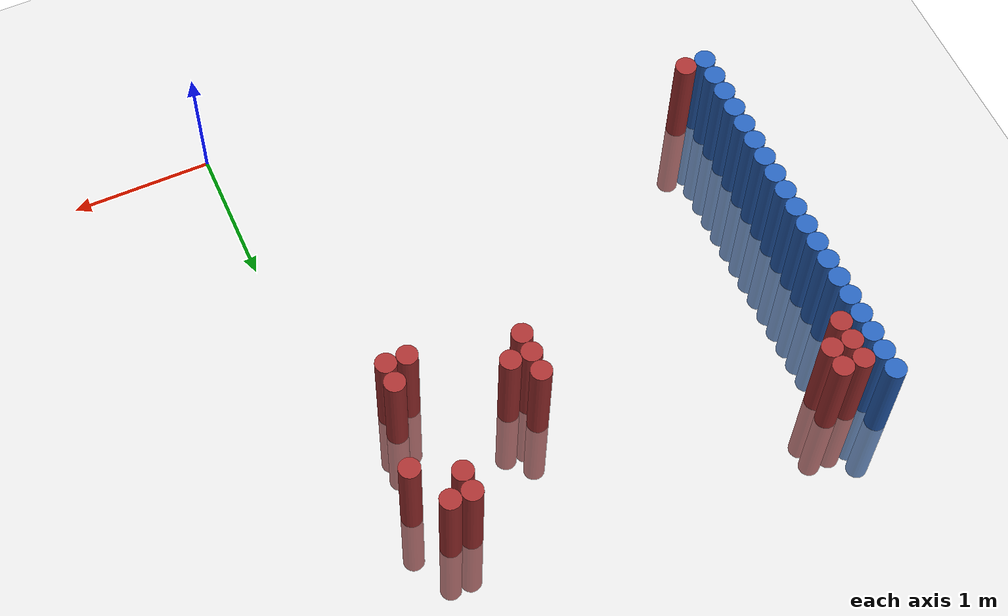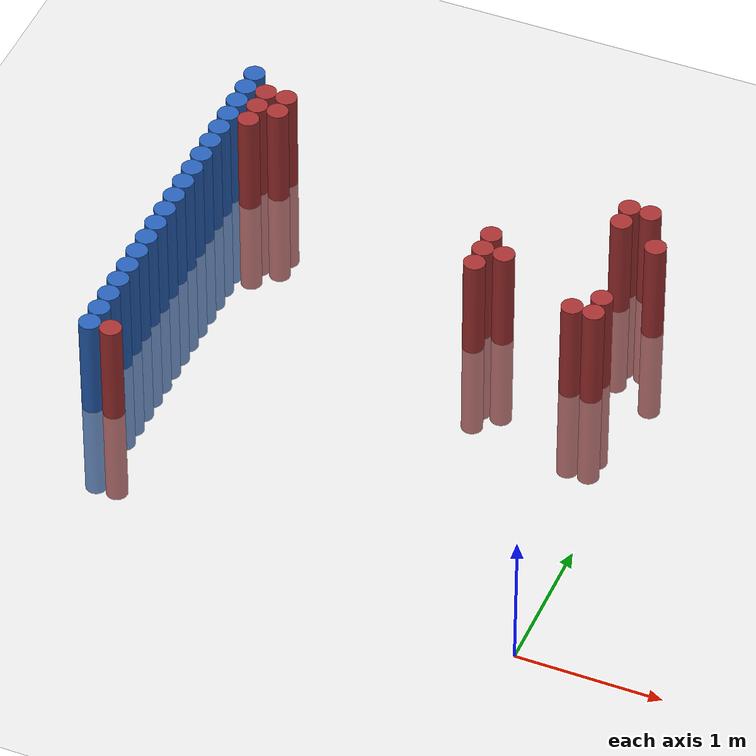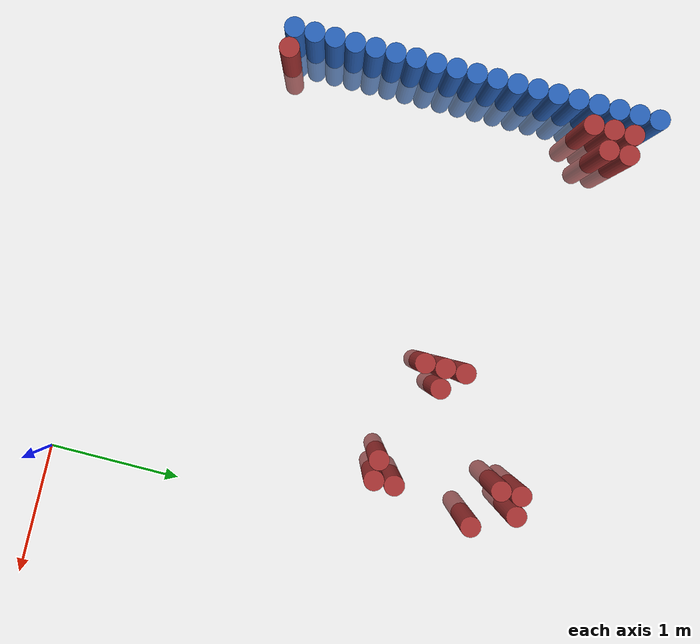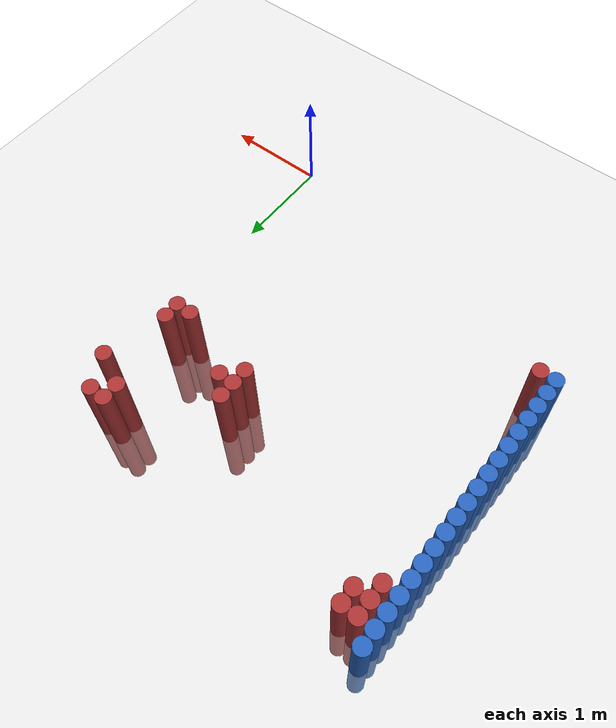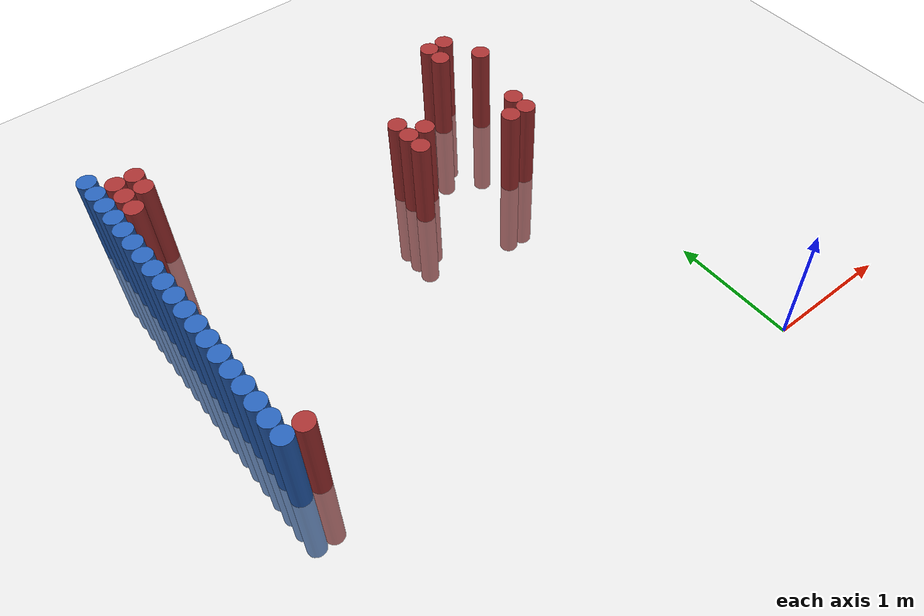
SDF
<sdf version="1.6">
 <world name="default">
  <model name="ground_plane">
   <static>1</static>
   <link name="link">
    <collision name="collision">
     <geometry><plane><normal>0 0 1</normal><size>100 100</size></plane></geometry>
     <surface><friction><ode><mu>100</mu><mu2>50</mu2></ode></friction></surface>
    </collision>
    <visual name="visual">
     <cast_shadows>0</cast_shadows>
     <geometry><plane><normal>0 0 1</normal><size>100 100</size></plane></geometry>
     <material>
      <script><uri>file://media/materials/scripts/gazebo.material</uri><name>Gazebo/Grey</name></script>
     </material>
    </visual>
   </link>
  </model>
  <model name="unit_cylinder_129">
   <static>1</static>
   <pose>-3.425000 1.075000 0.000000 0.000000 0.000000 0.000000</pose>
   <link name="link">
    <inertial>
     <mass>1</mass>
     <inertia><ixx>0.145833</ixx><ixy>0</ixy><ixz>0</ixz><iyy>0.145833</iyy><iyz>0</iyz><izz>0.125</izz></inertia>
    </inertial>
    <collision name="collision">
     <geometry><cylinder><radius>0.075000</radius><length>1.5</length></cylinder></geometry>
    </collision>
    <visual name="visual">
     <geometry><cylinder><radius>0.075000</radius><length>1.5</length></cylinder></geometry>
     <material>
      <ambient>0.152000 0.379000 0.720000 1</ambient>
      <diffuse>0.152000 0.379000 0.720000 1</diffuse>
     </material>
     <material>
      <script><name>Gazebo/Grey</name><uri>file://media/materials/scripts/gazebo.material</uri></script>
     </material>
    </visual>
   </link>
  </model>
  <model name="unit_cylinder_131">
   <static>1</static>
   <pose>-3.425000 1.225000 0.000000 0.000000 0.000000 0.000000</pose>
   <link name="link">
    <inertial>
     <mass>1</mass>
     <inertia><ixx>0.145833</ixx><ixy>0</ixy><ixz>0</ixz><iyy>0.145833</iyy><iyz>0</iyz><izz>0.125</izz></inertia>
    </inertial>
    <collision name="collision">
     <geometry><cylinder><radius>0.075000</radius><length>1.5</length></cylinder></geometry>
    </collision>
    <visual name="visual">
     <geometry><cylinder><radius>0.075000</radius><length>1.5</length></cylinder></geometry>
     <material>
      <ambient>0.152000 0.379000 0.720000 1</ambient>
      <diffuse>0.152000 0.379000 0.720000 1</diffuse>
     </material>
     <material>
      <script><name>Gazebo/Grey</name><uri>file://media/materials/scripts/gazebo.material</uri></script>
     </material>
    </visual>
   </link>
  </model>
  <model name="unit_cylinder_133">
   <static>1</static>
   <pose>-3.425000 1.375000 0.000000 0.000000 0.000000 0.000000</pose>
   <link name="link">
    <inertial>
     <mass>1</mass>
     <inertia><ixx>0.145833</ixx><ixy>0</ixy><ixz>0</ixz><iyy>0.145833</iyy><iyz>0</iyz><izz>0.125</izz></inertia>
    </inertial>
    <collision name="collision">
     <geometry><cylinder><radius>0.075000</radius><length>1.5</length></cylinder></geometry>
    </collision>
    <visual name="visual">
     <geometry><cylinder><radius>0.075000</radius><length>1.5</length></cylinder></geometry>
     <material>
      <ambient>0.152000 0.379000 0.720000 1</ambient>
      <diffuse>0.152000 0.379000 0.720000 1</diffuse>
     </material>
     <material>
      <script><name>Gazebo/Grey</name><uri>file://media/materials/scripts/gazebo.material</uri></script>
     </material>
    </visual>
   </link>
  </model>
  <model name="unit_cylinder_135">
   <static>1</static>
   <pose>-3.425000 1.525000 0.000000 0.000000 0.000000 0.000000</pose>
   <link name="link">
    <inertial>
     <mass>1</mass>
     <inertia><ixx>0.145833</ixx><ixy>0</ixy><ixz>0</ixz><iyy>0.145833</iyy><iyz>0</iyz><izz>0.125</izz></inertia>
    </inertial>
    <collision name="collision">
     <geometry><cylinder><radius>0.075000</radius><length>1.5</length></cylinder></geometry>
    </collision>
    <visual name="visual">
     <geometry><cylinder><radius>0.075000</radius><length>1.5</length></cylinder></geometry>
     <material>
      <ambient>0.152000 0.379000 0.720000 1</ambient>
      <diffuse>0.152000 0.379000 0.720000 1</diffuse>
     </material>
     <material>
      <script><name>Gazebo/Grey</name><uri>file://media/materials/scripts/gazebo.material</uri></script>
     </material>
    </visual>
   </link>
  </model>
  <model name="unit_cylinder_137">
   <static>1</static>
   <pose>-3.425000 1.675000 0.000000 0.000000 0.000000 0.000000</pose>
   <link name="link">
    <inertial>
     <mass>1</mass>
     <inertia><ixx>0.145833</ixx><ixy>0</ixy><ixz>0</ixz><iyy>0.145833</iyy><iyz>0</iyz><izz>0.125</izz></inertia>
    </inertial>
    <collision name="collision">
     <geometry><cylinder><radius>0.075000</radius><length>1.5</length></cylinder></geometry>
    </collision>
    <visual name="visual">
     <geometry><cylinder><radius>0.075000</radius><length>1.5</length></cylinder></geometry>
     <material>
      <ambient>0.152000 0.379000 0.720000 1</ambient>
      <diffuse>0.152000 0.379000 0.720000 1</diffuse>
     </material>
     <material>
      <script><name>Gazebo/Grey</name><uri>file://media/materials/scripts/gazebo.material</uri></script>
     </material>
    </visual>
   </link>
  </model>
  <model name="unit_cylinder_139">
   <static>1</static>
   <pose>-3.425000 1.825000 0.000000 0.000000 0.000000 0.000000</pose>
   <link name="link">
    <inertial>
     <mass>1</mass>
     <inertia><ixx>0.145833</ixx><ixy>0</ixy><ixz>0</ixz><iyy>0.145833</iyy><iyz>0</iyz><izz>0.125</izz></inertia>
    </inertial>
    <collision name="collision">
     <geometry><cylinder><radius>0.075000</radius><length>1.5</length></cylinder></geometry>
    </collision>
    <visual name="visual">
     <geometry><cylinder><radius>0.075000</radius><length>1.5</length></cylinder></geometry>
     <material>
      <ambient>0.152000 0.379000 0.720000 1</ambient>
      <diffuse>0.152000 0.379000 0.720000 1</diffuse>
     </material>
     <material>
      <script><name>Gazebo/Grey</name><uri>file://media/materials/scripts/gazebo.material</uri></script>
     </material>
    </visual>
   </link>
  </model>
  <model name="unit_cylinder_141">
   <static>1</static>
   <pose>-3.425000 1.975000 0.000000 0.000000 0.000000 0.000000</pose>
   <link name="link">
    <inertial>
     <mass>1</mass>
     <inertia><ixx>0.145833</ixx><ixy>0</ixy><ixz>0</ixz><iyy>0.145833</iyy><iyz>0</iyz><izz>0.125</izz></inertia>
    </inertial>
    <collision name="collision">
     <geometry><cylinder><radius>0.075000</radius><length>1.5</length></cylinder></geometry>
    </collision>
    <visual name="visual">
     <geometry><cylinder><radius>0.075000</radius><length>1.5</length></cylinder></geometry>
     <material>
      <ambient>0.152000 0.379000 0.720000 1</ambient>
      <diffuse>0.152000 0.379000 0.720000 1</diffuse>
     </material>
     <material>
      <script><name>Gazebo/Grey</name><uri>file://media/materials/scripts/gazebo.material</uri></script>
     </material>
    </visual>
   </link>
  </model>
  <model name="unit_cylinder_143">
   <static>1</static>
   <pose>-3.425000 2.125000 0.000000 0.000000 0.000000 0.000000</pose>
   <link name="link">
    <inertial>
     <mass>1</mass>
     <inertia><ixx>0.145833</ixx><ixy>0</ixy><ixz>0</ixz><iyy>0.145833</iyy><iyz>0</iyz><izz>0.125</izz></inertia>
    </inertial>
    <collision name="collision">
     <geometry><cylinder><radius>0.075000</radius><length>1.5</length></cylinder></geometry>
    </collision>
    <visual name="visual">
     <geometry><cylinder><radius>0.075000</radius><length>1.5</length></cylinder></geometry>
     <material>
      <ambient>0.152000 0.379000 0.720000 1</ambient>
      <diffuse>0.152000 0.379000 0.720000 1</diffuse>
     </material>
     <material>
      <script><name>Gazebo/Grey</name><uri>file://media/materials/scripts/gazebo.material</uri></script>
     </material>
    </visual>
   </link>
  </model>
  <model name="unit_cylinder_145">
   <static>1</static>
   <pose>-3.425000 2.275000 0.000000 0.000000 0.000000 0.000000</pose>
   <link name="link">
    <inertial>
     <mass>1</mass>
     <inertia><ixx>0.145833</ixx><ixy>0</ixy><ixz>0</ixz><iyy>0.145833</iyy><iyz>0</iyz><izz>0.125</izz></inertia>
    </inertial>
    <collision name="collision">
     <geometry><cylinder><radius>0.075000</radius><length>1.5</length></cylinder></geometry>
    </collision>
    <visual name="visual">
     <geometry><cylinder><radius>0.075000</radius><length>1.5</length></cylinder></geometry>
     <material>
      <ambient>0.152000 0.379000 0.720000 1</ambient>
      <diffuse>0.152000 0.379000 0.720000 1</diffuse>
     </material>
     <material>
      <script><name>Gazebo/Grey</name><uri>file://media/materials/scripts/gazebo.material</uri></script>
     </material>
    </visual>
   </link>
  </model>
  <model name="unit_cylinder_147">
   <static>1</static>
   <pose>-3.425000 2.425000 0.000000 0.000000 0.000000 0.000000</pose>
   <link name="link">
    <inertial>
     <mass>1</mass>
     <inertia><ixx>0.145833</ixx><ixy>0</ixy><ixz>0</ixz><iyy>0.145833</iyy><iyz>0</iyz><izz>0.125</izz></inertia>
    </inertial>
    <collision name="collision">
     <geometry><cylinder><radius>0.075000</radius><length>1.5</length></cylinder></geometry>
    </collision>
    <visual name="visual">
     <geometry><cylinder><radius>0.075000</radius><length>1.5</length></cylinder></geometry>
     <material>
      <ambient>0.152000 0.379000 0.720000 1</ambient>
      <diffuse>0.152000 0.379000 0.720000 1</diffuse>
     </material>
     <material>
      <script><name>Gazebo/Grey</name><uri>file://media/materials/scripts/gazebo.material</uri></script>
     </material>
    </visual>
   </link>
  </model>
  <model name="unit_cylinder_149">
   <static>1</static>
   <pose>-3.425000 2.575000 0.000000 0.000000 0.000000 0.000000</pose>
   <link name="link">
    <inertial>
     <mass>1</mass>
     <inertia><ixx>0.145833</ixx><ixy>0</ixy><ixz>0</ixz><iyy>0.145833</iyy><iyz>0</iyz><izz>0.125</izz></inertia>
    </inertial>
    <collision name="collision">
     <geometry><cylinder><radius>0.075000</radius><length>1.5</length></cylinder></geometry>
    </collision>
    <visual name="visual">
     <geometry><cylinder><radius>0.075000</radius><length>1.5</length></cylinder></geometry>
     <material>
      <ambient>0.152000 0.379000 0.720000 1</ambient>
      <diffuse>0.152000 0.379000 0.720000 1</diffuse>
     </material>
     <material>
      <script><name>Gazebo/Grey</name><uri>file://media/materials/scripts/gazebo.material</uri></script>
     </material>
    </visual>
   </link>
  </model>
  <model name="unit_cylinder_151">
   <static>1</static>
   <pose>-3.425000 2.725000 0.000000 0.000000 0.000000 0.000000</pose>
   <link name="link">
    <inertial>
     <mass>1</mass>
     <inertia><ixx>0.145833</ixx><ixy>0</ixy><ixz>0</ixz><iyy>0.145833</iyy><iyz>0</iyz><izz>0.125</izz></inertia>
    </inertial>
    <collision name="collision">
     <geometry><cylinder><radius>0.075000</radius><length>1.5</length></cylinder></geometry>
    </collision>
    <visual name="visual">
     <geometry><cylinder><radius>0.075000</radius><length>1.5</length></cylinder></geometry>
     <material>
      <ambient>0.152000 0.379000 0.720000 1</ambient>
      <diffuse>0.152000 0.379000 0.720000 1</diffuse>
     </material>
     <material>
      <script><name>Gazebo/Grey</name><uri>file://media/materials/scripts/gazebo.material</uri></script>
     </material>
    </visual>
   </link>
  </model>
  <model name="unit_cylinder_153">
   <static>1</static>
   <pose>-3.425000 2.875000 0.000000 0.000000 0.000000 0.000000</pose>
   <link name="link">
    <inertial>
     <mass>1</mass>
     <inertia><ixx>0.145833</ixx><ixy>0</ixy><ixz>0</ixz><iyy>0.145833</iyy><iyz>0</iyz><izz>0.125</izz></inertia>
    </inertial>
    <collision name="collision">
     <geometry><cylinder><radius>0.075000</radius><length>1.5</length></cylinder></geometry>
    </collision>
    <visual name="visual">
     <geometry><cylinder><radius>0.075000</radius><length>1.5</length></cylinder></geometry>
     <material>
      <ambient>0.152000 0.379000 0.720000 1</ambient>
      <diffuse>0.152000 0.379000 0.720000 1</diffuse>
     </material>
     <material>
      <script><name>Gazebo/Grey</name><uri>file://media/materials/scripts/gazebo.material</uri></script>
     </material>
    </visual>
   </link>
  </model>
  <model name="unit_cylinder_155">
   <static>1</static>
   <pose>-3.425000 3.025000 0.000000 0.000000 0.000000 0.000000</pose>
   <link name="link">
    <inertial>
     <mass>1</mass>
     <inertia><ixx>0.145833</ixx><ixy>0</ixy><ixz>0</ixz><iyy>0.145833</iyy><iyz>0</iyz><izz>0.125</izz></inertia>
    </inertial>
    <collision name="collision">
     <geometry><cylinder><radius>0.075000</radius><length>1.5</length></cylinder></geometry>
    </collision>
    <visual name="visual">
     <geometry><cylinder><radius>0.075000</radius><length>1.5</length></cylinder></geometry>
     <material>
      <ambient>0.152000 0.379000 0.720000 1</ambient>
      <diffuse>0.152000 0.379000 0.720000 1</diffuse>
     </material>
     <material>
      <script><name>Gazebo/Grey</name><uri>file://media/materials/scripts/gazebo.material</uri></script>
     </material>
    </visual>
   </link>
  </model>
  <model name="unit_cylinder_157">
   <static>1</static>
   <pose>-3.425000 3.175000 0.000000 0.000000 0.000000 0.000000</pose>
   <link name="link">
    <inertial>
     <mass>1</mass>
     <inertia><ixx>0.145833</ixx><ixy>0</ixy><ixz>0</ixz><iyy>0.145833</iyy><iyz>0</iyz><izz>0.125</izz></inertia>
    </inertial>
    <collision name="collision">
     <geometry><cylinder><radius>0.075000</radius><length>1.5</length></cylinder></geometry>
    </collision>
    <visual name="visual">
     <geometry><cylinder><radius>0.075000</radius><length>1.5</length></cylinder></geometry>
     <material>
      <ambient>0.152000 0.379000 0.720000 1</ambient>
      <diffuse>0.152000 0.379000 0.720000 1</diffuse>
     </material>
     <material>
      <script><name>Gazebo/Grey</name><uri>file://media/materials/scripts/gazebo.material</uri></script>
     </material>
    </visual>
   </link>
  </model>
  <model name="unit_cylinder_159">
   <static>1</static>
   <pose>-3.425000 3.325000 0.000000 0.000000 0.000000 0.000000</pose>
   <link name="link">
    <inertial>
     <mass>1</mass>
     <inertia><ixx>0.145833</ixx><ixy>0</ixy><ixz>0</ixz><iyy>0.145833</iyy><iyz>0</iyz><izz>0.125</izz></inertia>
    </inertial>
    <collision name="collision">
     <geometry><cylinder><radius>0.075000</radius><length>1.5</length></cylinder></geometry>
    </collision>
    <visual name="visual">
     <geometry><cylinder><radius>0.075000</radius><length>1.5</length></cylinder></geometry>
     <material>
      <ambient>0.152000 0.379000 0.720000 1</ambient>
      <diffuse>0.152000 0.379000 0.720000 1</diffuse>
     </material>
     <material>
      <script><name>Gazebo/Grey</name><uri>file://media/materials/scripts/gazebo.material</uri></script>
     </material>
    </visual>
   </link>
  </model>
  <model name="unit_cylinder_161">
   <static>1</static>
   <pose>-3.425000 3.475000 0.000000 0.000000 0.000000 0.000000</pose>
   <link name="link">
    <inertial>
     <mass>1</mass>
     <inertia><ixx>0.145833</ixx><ixy>0</ixy><ixz>0</ixz><iyy>0.145833</iyy><iyz>0</iyz><izz>0.125</izz></inertia>
    </inertial>
    <collision name="collision">
     <geometry><cylinder><radius>0.075000</radius><length>1.5</length></cylinder></geometry>
    </collision>
    <visual name="visual">
     <geometry><cylinder><radius>0.075000</radius><length>1.5</length></cylinder></geometry>
     <material>
      <ambient>0.152000 0.379000 0.720000 1</ambient>
      <diffuse>0.152000 0.379000 0.720000 1</diffuse>
     </material>
     <material>
      <script><name>Gazebo/Grey</name><uri>file://media/materials/scripts/gazebo.material</uri></script>
     </material>
    </visual>
   </link>
  </model>
  <model name="unit_cylinder_163">
   <static>1</static>
   <pose>-3.425000 3.625000 0.000000 0.000000 0.000000 0.000000</pose>
   <link name="link">
    <inertial>
     <mass>1</mass>
     <inertia><ixx>0.145833</ixx><ixy>0</ixy><ixz>0</ixz><iyy>0.145833</iyy><iyz>0</iyz><izz>0.125</izz></inertia>
    </inertial>
    <collision name="collision">
     <geometry><cylinder><radius>0.075000</radius><length>1.5</length></cylinder></geometry>
    </collision>
    <visual name="visual">
     <geometry><cylinder><radius>0.075000</radius><length>1.5</length></cylinder></geometry>
     <material>
      <ambient>0.152000 0.379000 0.720000 1</ambient>
      <diffuse>0.152000 0.379000 0.720000 1</diffuse>
     </material>
     <material>
      <script><name>Gazebo/Grey</name><uri>file://media/materials/scripts/gazebo.material</uri></script>
     </material>
    </visual>
   </link>
  </model>
  <model name="unit_cylinder_165">
   <static>1</static>
   <pose>-3.425000 3.775000 0.000000 0.000000 0.000000 0.000000</pose>
   <link name="link">
    <inertial>
     <mass>1</mass>
     <inertia><ixx>0.145833</ixx><ixy>0</ixy><ixz>0</ixz><iyy>0.145833</iyy><iyz>0</iyz><izz>0.125</izz></inertia>
    </inertial>
    <collision name="collision">
     <geometry><cylinder><radius>0.075000</radius><length>1.5</length></cylinder></geometry>
    </collision>
    <visual name="visual">
     <geometry><cylinder><radius>0.075000</radius><length>1.5</length></cylinder></geometry>
     <material>
      <ambient>0.152000 0.379000 0.720000 1</ambient>
      <diffuse>0.152000 0.379000 0.720000 1</diffuse>
     </material>
     <material>
      <script><name>Gazebo/Grey</name><uri>file://media/materials/scripts/gazebo.material</uri></script>
     </material>
    </visual>
   </link>
  </model>
  <model name="unit_cylinder_228">
   <static>1</static>
   <pose>-3.425000 1.075000 0.000000 0.000000 0.000000 0.000000</pose>
   <link name="link">
    <inertial>
     <mass>1</mass>
     <inertia><ixx>0.145833</ixx><ixy>0</ixy><ixz>0</ixz><iyy>0.145833</iyy><iyz>0</iyz><izz>0.125</izz></inertia>
    </inertial>
    <collision name="collision">
     <geometry><cylinder><radius>0.075000</radius><length>1.5</length></cylinder></geometry>
    </collision>
    <visual name="visual">
     <geometry><cylinder><radius>0.075000</radius><length>1.5</length></cylinder></geometry>
     <material>
      <ambient>0.152000 0.379000 0.720000 1</ambient>
      <diffuse>0.152000 0.379000 0.720000 1</diffuse>
     </material>
     <material>
      <script><name>Gazebo/Grey</name><uri>file://media/materials/scripts/gazebo.material</uri></script>
     </material>
    </visual>
   </link>
  </model>
  <model name="unit_cylinder_229">
   <static>1</static>
   <pose>-3.425000 1.225000 0.000000 0.000000 0.000000 0.000000</pose>
   <link name="link">
    <inertial>
     <mass>1</mass>
     <inertia><ixx>0.145833</ixx><ixy>0</ixy><ixz>0</ixz><iyy>0.145833</iyy><iyz>0</iyz><izz>0.125</izz></inertia>
    </inertial>
    <collision name="collision">
     <geometry><cylinder><radius>0.075000</radius><length>1.5</length></cylinder></geometry>
    </collision>
    <visual name="visual">
     <geometry><cylinder><radius>0.075000</radius><length>1.5</length></cylinder></geometry>
     <material>
      <ambient>0.152000 0.379000 0.720000 1</ambient>
      <diffuse>0.152000 0.379000 0.720000 1</diffuse>
     </material>
     <material>
      <script><name>Gazebo/Grey</name><uri>file://media/materials/scripts/gazebo.material</uri></script>
     </material>
    </visual>
   </link>
  </model>
  <model name="unit_cylinder_230">
   <static>1</static>
   <pose>-3.425000 1.375000 0.000000 0.000000 0.000000 0.000000</pose>
   <link name="link">
    <inertial>
     <mass>1</mass>
     <inertia><ixx>0.145833</ixx><ixy>0</ixy><ixz>0</ixz><iyy>0.145833</iyy><iyz>0</iyz><izz>0.125</izz></inertia>
    </inertial>
    <collision name="collision">
     <geometry><cylinder><radius>0.075000</radius><length>1.5</length></cylinder></geometry>
    </collision>
    <visual name="visual">
     <geometry><cylinder><radius>0.075000</radius><length>1.5</length></cylinder></geometry>
     <material>
      <ambient>0.152000 0.379000 0.720000 1</ambient>
      <diffuse>0.152000 0.379000 0.720000 1</diffuse>
     </material>
     <material>
      <script><name>Gazebo/Grey</name><uri>file://media/materials/scripts/gazebo.material</uri></script>
     </material>
    </visual>
   </link>
  </model>
  <model name="unit_cylinder_231">
   <static>1</static>
   <pose>-3.425000 1.525000 0.000000 0.000000 0.000000 0.000000</pose>
   <link name="link">
    <inertial>
     <mass>1</mass>
     <inertia><ixx>0.145833</ixx><ixy>0</ixy><ixz>0</ixz><iyy>0.145833</iyy><iyz>0</iyz><izz>0.125</izz></inertia>
    </inertial>
    <collision name="collision">
     <geometry><cylinder><radius>0.075000</radius><length>1.5</length></cylinder></geometry>
    </collision>
    <visual name="visual">
     <geometry><cylinder><radius>0.075000</radius><length>1.5</length></cylinder></geometry>
     <material>
      <ambient>0.152000 0.379000 0.720000 1</ambient>
      <diffuse>0.152000 0.379000 0.720000 1</diffuse>
     </material>
     <material>
      <script><name>Gazebo/Grey</name><uri>file://media/materials/scripts/gazebo.material</uri></script>
     </material>
    </visual>
   </link>
  </model>
  <model name="unit_cylinder_232">
   <static>1</static>
   <pose>-3.425000 1.675000 0.000000 0.000000 0.000000 0.000000</pose>
   <link name="link">
    <inertial>
     <mass>1</mass>
     <inertia><ixx>0.145833</ixx><ixy>0</ixy><ixz>0</ixz><iyy>0.145833</iyy><iyz>0</iyz><izz>0.125</izz></inertia>
    </inertial>
    <collision name="collision">
     <geometry><cylinder><radius>0.075000</radius><length>1.5</length></cylinder></geometry>
    </collision>
    <visual name="visual">
     <geometry><cylinder><radius>0.075000</radius><length>1.5</length></cylinder></geometry>
     <material>
      <ambient>0.152000 0.379000 0.720000 1</ambient>
      <diffuse>0.152000 0.379000 0.720000 1</diffuse>
     </material>
     <material>
      <script><name>Gazebo/Grey</name><uri>file://media/materials/scripts/gazebo.material</uri></script>
     </material>
    </visual>
   </link>
  </model>
  <model name="unit_cylinder_233">
   <static>1</static>
   <pose>-3.425000 1.825000 0.000000 0.000000 0.000000 0.000000</pose>
   <link name="link">
    <inertial>
     <mass>1</mass>
     <inertia><ixx>0.145833</ixx><ixy>0</ixy><ixz>0</ixz><iyy>0.145833</iyy><iyz>0</iyz><izz>0.125</izz></inertia>
    </inertial>
    <collision name="collision">
     <geometry><cylinder><radius>0.075000</radius><length>1.5</length></cylinder></geometry>
    </collision>
    <visual name="visual">
     <geometry><cylinder><radius>0.075000</radius><length>1.5</length></cylinder></geometry>
     <material>
      <ambient>0.152000 0.379000 0.720000 1</ambient>
      <diffuse>0.152000 0.379000 0.720000 1</diffuse>
     </material>
     <material>
      <script><name>Gazebo/Grey</name><uri>file://media/materials/scripts/gazebo.material</uri></script>
     </material>
    </visual>
   </link>
  </model>
  <model name="unit_cylinder_234">
   <static>1</static>
   <pose>-3.425000 1.975000 0.000000 0.000000 0.000000 0.000000</pose>
   <link name="link">
    <inertial>
     <mass>1</mass>
     <inertia><ixx>0.145833</ixx><ixy>0</ixy><ixz>0</ixz><iyy>0.145833</iyy><iyz>0</iyz><izz>0.125</izz></inertia>
    </inertial>
    <collision name="collision">
     <geometry><cylinder><radius>0.075000</radius><length>1.5</length></cylinder></geometry>
    </collision>
    <visual name="visual">
     <geometry><cylinder><radius>0.075000</radius><length>1.5</length></cylinder></geometry>
     <material>
      <ambient>0.152000 0.379000 0.720000 1</ambient>
      <diffuse>0.152000 0.379000 0.720000 1</diffuse>
     </material>
     <material>
      <script><name>Gazebo/Grey</name><uri>file://media/materials/scripts/gazebo.material</uri></script>
     </material>
    </visual>
   </link>
  </model>
  <model name="unit_cylinder_235">
   <static>1</static>
   <pose>-3.425000 2.125000 0.000000 0.000000 0.000000 0.000000</pose>
   <link name="link">
    <inertial>
     <mass>1</mass>
     <inertia><ixx>0.145833</ixx><ixy>0</ixy><ixz>0</ixz><iyy>0.145833</iyy><iyz>0</iyz><izz>0.125</izz></inertia>
    </inertial>
    <collision name="collision">
     <geometry><cylinder><radius>0.075000</radius><length>1.5</length></cylinder></geometry>
    </collision>
    <visual name="visual">
     <geometry><cylinder><radius>0.075000</radius><length>1.5</length></cylinder></geometry>
     <material>
      <ambient>0.152000 0.379000 0.720000 1</ambient>
      <diffuse>0.152000 0.379000 0.720000 1</diffuse>
     </material>
     <material>
      <script><name>Gazebo/Grey</name><uri>file://media/materials/scripts/gazebo.material</uri></script>
     </material>
    </visual>
   </link>
  </model>
  <model name="unit_cylinder_236">
   <static>1</static>
   <pose>-3.425000 2.275000 0.000000 0.000000 0.000000 0.000000</pose>
   <link name="link">
    <inertial>
     <mass>1</mass>
     <inertia><ixx>0.145833</ixx><ixy>0</ixy><ixz>0</ixz><iyy>0.145833</iyy><iyz>0</iyz><izz>0.125</izz></inertia>
    </inertial>
    <collision name="collision">
     <geometry><cylinder><radius>0.075000</radius><length>1.5</length></cylinder></geometry>
    </collision>
    <visual name="visual">
     <geometry><cylinder><radius>0.075000</radius><length>1.5</length></cylinder></geometry>
     <material>
      <ambient>0.152000 0.379000 0.720000 1</ambient>
      <diffuse>0.152000 0.379000 0.720000 1</diffuse>
     </material>
     <material>
      <script><name>Gazebo/Grey</name><uri>file://media/materials/scripts/gazebo.material</uri></script>
     </material>
    </visual>
   </link>
  </model>
  <model name="unit_cylinder_237">
   <static>1</static>
   <pose>-3.425000 2.425000 0.000000 0.000000 0.000000 0.000000</pose>
   <link name="link">
    <inertial>
     <mass>1</mass>
     <inertia><ixx>0.145833</ixx><ixy>0</ixy><ixz>0</ixz><iyy>0.145833</iyy><iyz>0</iyz><izz>0.125</izz></inertia>
    </inertial>
    <collision name="collision">
     <geometry><cylinder><radius>0.075000</radius><length>1.5</length></cylinder></geometry>
    </collision>
    <visual name="visual">
     <geometry><cylinder><radius>0.075000</radius><length>1.5</length></cylinder></geometry>
     <material>
      <ambient>0.152000 0.379000 0.720000 1</ambient>
      <diffuse>0.152000 0.379000 0.720000 1</diffuse>
     </material>
     <material>
      <script><name>Gazebo/Grey</name><uri>file://media/materials/scripts/gazebo.material</uri></script>
     </material>
    </visual>
   </link>
  </model>
  <model name="unit_cylinder_238">
   <static>1</static>
   <pose>-3.425000 2.575000 0.000000 0.000000 0.000000 0.000000</pose>
   <link name="link">
    <inertial>
     <mass>1</mass>
     <inertia><ixx>0.145833</ixx><ixy>0</ixy><ixz>0</ixz><iyy>0.145833</iyy><iyz>0</iyz><izz>0.125</izz></inertia>
    </inertial>
    <collision name="collision">
     <geometry><cylinder><radius>0.075000</radius><length>1.5</length></cylinder></geometry>
    </collision>
    <visual name="visual">
     <geometry><cylinder><radius>0.075000</radius><length>1.5</length></cylinder></geometry>
     <material>
      <ambient>0.152000 0.379000 0.720000 1</ambient>
      <diffuse>0.152000 0.379000 0.720000 1</diffuse>
     </material>
     <material>
      <script><name>Gazebo/Grey</name><uri>file://media/materials/scripts/gazebo.material</uri></script>
     </material>
    </visual>
   </link>
  </model>
  <model name="unit_cylinder_239">
   <static>1</static>
   <pose>-3.425000 2.725000 0.000000 0.000000 0.000000 0.000000</pose>
   <link name="link">
    <inertial>
     <mass>1</mass>
     <inertia><ixx>0.145833</ixx><ixy>0</ixy><ixz>0</ixz><iyy>0.145833</iyy><iyz>0</iyz><izz>0.125</izz></inertia>
    </inertial>
    <collision name="collision">
     <geometry><cylinder><radius>0.075000</radius><length>1.5</length></cylinder></geometry>
    </collision>
    <visual name="visual">
     <geometry><cylinder><radius>0.075000</radius><length>1.5</length></cylinder></geometry>
     <material>
      <ambient>0.152000 0.379000 0.720000 1</ambient>
      <diffuse>0.152000 0.379000 0.720000 1</diffuse>
     </material>
     <material>
      <script><name>Gazebo/Grey</name><uri>file://media/materials/scripts/gazebo.material</uri></script>
     </material>
    </visual>
   </link>
  </model>
  <model name="unit_cylinder_240">
   <static>1</static>
   <pose>-3.425000 2.875000 0.000000 0.000000 0.000000 0.000000</pose>
   <link name="link">
    <inertial>
     <mass>1</mass>
     <inertia><ixx>0.145833</ixx><ixy>0</ixy><ixz>0</ixz><iyy>0.145833</iyy><iyz>0</iyz><izz>0.125</izz></inertia>
    </inertial>
    <collision name="collision">
     <geometry><cylinder><radius>0.075000</radius><length>1.5</length></cylinder></geometry>
    </collision>
    <visual name="visual">
     <geometry><cylinder><radius>0.075000</radius><length>1.5</length></cylinder></geometry>
     <material>
      <ambient>0.152000 0.379000 0.720000 1</ambient>
      <diffuse>0.152000 0.379000 0.720000 1</diffuse>
     </material>
     <material>
      <script><name>Gazebo/Grey</name><uri>file://media/materials/scripts/gazebo.material</uri></script>
     </material>
    </visual>
   </link>
  </model>
  <model name="unit_cylinder_241">
   <static>1</static>
   <pose>-3.425000 3.025000 0.000000 0.000000 0.000000 0.000000</pose>
   <link name="link">
    <inertial>
     <mass>1</mass>
     <inertia><ixx>0.145833</ixx><ixy>0</ixy><ixz>0</ixz><iyy>0.145833</iyy><iyz>0</iyz><izz>0.125</izz></inertia>
    </inertial>
    <collision name="collision">
     <geometry><cylinder><radius>0.075000</radius><length>1.5</length></cylinder></geometry>
    </collision>
    <visual name="visual">
     <geometry><cylinder><radius>0.075000</radius><length>1.5</length></cylinder></geometry>
     <material>
      <ambient>0.152000 0.379000 0.720000 1</ambient>
      <diffuse>0.152000 0.379000 0.720000 1</diffuse>
     </material>
     <material>
      <script><name>Gazebo/Grey</name><uri>file://media/materials/scripts/gazebo.material</uri></script>
     </material>
    </visual>
   </link>
  </model>
  <model name="unit_cylinder_242">
   <static>1</static>
   <pose>-3.425000 3.175000 0.000000 0.000000 0.000000 0.000000</pose>
   <link name="link">
    <inertial>
     <mass>1</mass>
     <inertia><ixx>0.145833</ixx><ixy>0</ixy><ixz>0</ixz><iyy>0.145833</iyy><iyz>0</iyz><izz>0.125</izz></inertia>
    </inertial>
    <collision name="collision">
     <geometry><cylinder><radius>0.075000</radius><length>1.5</length></cylinder></geometry>
    </collision>
    <visual name="visual">
     <geometry><cylinder><radius>0.075000</radius><length>1.5</length></cylinder></geometry>
     <material>
      <ambient>0.152000 0.379000 0.720000 1</ambient>
      <diffuse>0.152000 0.379000 0.720000 1</diffuse>
     </material>
     <material>
      <script><name>Gazebo/Grey</name><uri>file://media/materials/scripts/gazebo.material</uri></script>
     </material>
    </visual>
   </link>
  </model>
  <model name="unit_cylinder_243">
   <static>1</static>
   <pose>-3.425000 3.325000 0.000000 0.000000 0.000000 0.000000</pose>
   <link name="link">
    <inertial>
     <mass>1</mass>
     <inertia><ixx>0.145833</ixx><ixy>0</ixy><ixz>0</ixz><iyy>0.145833</iyy><iyz>0</iyz><izz>0.125</izz></inertia>
    </inertial>
    <collision name="collision">
     <geometry><cylinder><radius>0.075000</radius><length>1.5</length></cylinder></geometry>
    </collision>
    <visual name="visual">
     <geometry><cylinder><radius>0.075000</radius><length>1.5</length></cylinder></geometry>
     <material>
      <ambient>0.152000 0.379000 0.720000 1</ambient>
      <diffuse>0.152000 0.379000 0.720000 1</diffuse>
     </material>
     <material>
      <script><name>Gazebo/Grey</name><uri>file://media/materials/scripts/gazebo.material</uri></script>
     </material>
    </visual>
   </link>
  </model>
  <model name="unit_cylinder_244">
   <static>1</static>
   <pose>-3.425000 3.475000 0.000000 0.000000 0.000000 0.000000</pose>
   <link name="link">
    <inertial>
     <mass>1</mass>
     <inertia><ixx>0.145833</ixx><ixy>0</ixy><ixz>0</ixz><iyy>0.145833</iyy><iyz>0</iyz><izz>0.125</izz></inertia>
    </inertial>
    <collision name="collision">
     <geometry><cylinder><radius>0.075000</radius><length>1.5</length></cylinder></geometry>
    </collision>
    <visual name="visual">
     <geometry><cylinder><radius>0.075000</radius><length>1.5</length></cylinder></geometry>
     <material>
      <ambient>0.152000 0.379000 0.720000 1</ambient>
      <diffuse>0.152000 0.379000 0.720000 1</diffuse>
     </material>
     <material>
      <script><name>Gazebo/Grey</name><uri>file://media/materials/scripts/gazebo.material</uri></script>
     </material>
    </visual>
   </link>
  </model>
  <model name="unit_cylinder_245">
   <static>1</static>
   <pose>-3.425000 3.625000 0.000000 0.000000 0.000000 0.000000</pose>
   <link name="link">
    <inertial>
     <mass>1</mass>
     <inertia><ixx>0.145833</ixx><ixy>0</ixy><ixz>0</ixz><iyy>0.145833</iyy><iyz>0</iyz><izz>0.125</izz></inertia>
    </inertial>
    <collision name="collision">
     <geometry><cylinder><radius>0.075000</radius><length>1.5</length></cylinder></geometry>
    </collision>
    <visual name="visual">
     <geometry><cylinder><radius>0.075000</radius><length>1.5</length></cylinder></geometry>
     <material>
      <ambient>0.152000 0.379000 0.720000 1</ambient>
      <diffuse>0.152000 0.379000 0.720000 1</diffuse>
     </material>
     <material>
      <script><name>Gazebo/Grey</name><uri>file://media/materials/scripts/gazebo.material</uri></script>
     </material>
    </visual>
   </link>
  </model>
  <model name="unit_cylinder_273">
   <static>1</static>
   <pose>-3.275000 1.075000 0.000000 0.000000 0.000000 0.000000</pose>
   <link name="link">
    <inertial>
     <mass>1</mass>
     <inertia><ixx>0.145833</ixx><ixy>0</ixy><ixz>0</ixz><iyy>0.145833</iyy><iyz>0</iyz><izz>0.125</izz></inertia>
    </inertial>
    <collision name="collision">
     <geometry><cylinder><radius>0.075000</radius><length>1.5</length></cylinder></geometry>
    </collision>
    <visual name="visual">
     <geometry><cylinder><radius>0.075000</radius><length>1.5</length></cylinder></geometry>
     <material>
      <ambient>0.648000 0.192000 0.192000 1</ambient>
      <diffuse>0.648000 0.192000 0.192000 1</diffuse>
     </material>
     <material>
      <script><name>Gazebo/Grey</name><uri>file://media/materials/scripts/gazebo.material</uri></script>
     </material>
    </visual>
   </link>
  </model>
  <model name="unit_cylinder_274">
   <static>1</static>
   <pose>-3.275000 3.325000 0.000000 0.000000 0.000000 0.000000</pose>
   <link name="link">
    <inertial>
     <mass>1</mass>
     <inertia><ixx>0.145833</ixx><ixy>0</ixy><ixz>0</ixz><iyy>0.145833</iyy><iyz>0</iyz><izz>0.125</izz></inertia>
    </inertial>
    <collision name="collision">
     <geometry><cylinder><radius>0.075000</radius><length>1.5</length></cylinder></geometry>
    </collision>
    <visual name="visual">
     <geometry><cylinder><radius>0.075000</radius><length>1.5</length></cylinder></geometry>
     <material>
      <ambient>0.648000 0.192000 0.192000 1</ambient>
      <diffuse>0.648000 0.192000 0.192000 1</diffuse>
     </material>
     <material>
      <script><name>Gazebo/Grey</name><uri>file://media/materials/scripts/gazebo.material</uri></script>
     </material>
    </visual>
   </link>
  </model>
  <model name="unit_cylinder_275">
   <static>1</static>
   <pose>-3.275000 3.475000 0.000000 0.000000 0.000000 0.000000</pose>
   <link name="link">
    <inertial>
     <mass>1</mass>
     <inertia><ixx>0.145833</ixx><ixy>0</ixy><ixz>0</ixz><iyy>0.145833</iyy><iyz>0</iyz><izz>0.125</izz></inertia>
    </inertial>
    <collision name="collision">
     <geometry><cylinder><radius>0.075000</radius><length>1.5</length></cylinder></geometry>
    </collision>
    <visual name="visual">
     <geometry><cylinder><radius>0.075000</radius><length>1.5</length></cylinder></geometry>
     <material>
      <ambient>0.648000 0.192000 0.192000 1</ambient>
      <diffuse>0.648000 0.192000 0.192000 1</diffuse>
     </material>
     <material>
      <script><name>Gazebo/Grey</name><uri>file://media/materials/scripts/gazebo.material</uri></script>
     </material>
    </visual>
   </link>
  </model>
  <model name="unit_cylinder_276">
   <static>1</static>
   <pose>-3.275000 3.625000 0.000000 0.000000 0.000000 0.000000</pose>
   <link name="link">
    <inertial>
     <mass>1</mass>
     <inertia><ixx>0.145833</ixx><ixy>0</ixy><ixz>0</ixz><iyy>0.145833</iyy><iyz>0</iyz><izz>0.125</izz></inertia>
    </inertial>
    <collision name="collision">
     <geometry><cylinder><radius>0.075000</radius><length>1.5</length></cylinder></geometry>
    </collision>
    <visual name="visual">
     <geometry><cylinder><radius>0.075000</radius><length>1.5</length></cylinder></geometry>
     <material>
      <ambient>0.648000 0.192000 0.192000 1</ambient>
      <diffuse>0.648000 0.192000 0.192000 1</diffuse>
     </material>
     <material>
      <script><name>Gazebo/Grey</name><uri>file://media/materials/scripts/gazebo.material</uri></script>
     </material>
    </visual>
   </link>
  </model>
  <model name="unit_cylinder_289">
   <static>1</static>
   <pose>-3.125000 3.475000 0.000000 0.000000 0.000000 0.000000</pose>
   <link name="link">
    <inertial>
     <mass>1</mass>
     <inertia><ixx>0.145833</ixx><ixy>0</ixy><ixz>0</ixz><iyy>0.145833</iyy><iyz>0</iyz><izz>0.125</izz></inertia>
    </inertial>
    <collision name="collision">
     <geometry><cylinder><radius>0.075000</radius><length>1.5</length></cylinder></geometry>
    </collision>
    <visual name="visual">
     <geometry><cylinder><radius>0.075000</radius><length>1.5</length></cylinder></geometry>
     <material>
      <ambient>0.648000 0.192000 0.192000 1</ambient>
      <diffuse>0.648000 0.192000 0.192000 1</diffuse>
     </material>
     <material>
      <script><name>Gazebo/Grey</name><uri>file://media/materials/scripts/gazebo.material</uri></script>
     </material>
    </visual>
   </link>
  </model>
  <model name="unit_cylinder_290">
   <static>1</static>
   <pose>-3.125000 3.625000 0.000000 0.000000 0.000000 0.000000</pose>
   <link name="link">
    <inertial>
     <mass>1</mass>
     <inertia><ixx>0.145833</ixx><ixy>0</ixy><ixz>0</ixz><iyy>0.145833</iyy><iyz>0</iyz><izz>0.125</izz></inertia>
    </inertial>
    <collision name="collision">
     <geometry><cylinder><radius>0.075000</radius><length>1.5</length></cylinder></geometry>
    </collision>
    <visual name="visual">
     <geometry><cylinder><radius>0.075000</radius><length>1.5</length></cylinder></geometry>
     <material>
      <ambient>0.648000 0.192000 0.192000 1</ambient>
      <diffuse>0.648000 0.192000 0.192000 1</diffuse>
     </material>
     <material>
      <script><name>Gazebo/Grey</name><uri>file://media/materials/scripts/gazebo.material</uri></script>
     </material>
    </visual>
   </link>
  </model>
  <model name="unit_cylinder_327">
   <static>1</static>
   <pose>-1.325000 2.575000 0.000000 0.000000 0.000000 0.000000</pose>
   <link name="link">
    <inertial>
     <mass>1</mass>
     <inertia><ixx>0.145833</ixx><ixy>0</ixy><ixz>0</ixz><iyy>0.145833</iyy><iyz>0</iyz><izz>0.125</izz></inertia>
    </inertial>
    <collision name="collision">
     <geometry><cylinder><radius>0.075000</radius><length>1.5</length></cylinder></geometry>
    </collision>
    <visual name="visual">
     <geometry><cylinder><radius>0.075000</radius><length>1.5</length></cylinder></geometry>
     <material>
      <ambient>0.648000 0.192000 0.192000 1</ambient>
      <diffuse>0.648000 0.192000 0.192000 1</diffuse>
     </material>
     <material>
      <script><name>Gazebo/Grey</name><uri>file://media/materials/scripts/gazebo.material</uri></script>
     </material>
    </visual>
   </link>
  </model>
  <model name="unit_cylinder_328">
   <static>1</static>
   <pose>-1.325000 2.725000 0.000000 0.000000 0.000000 0.000000</pose>
   <link name="link">
    <inertial>
     <mass>1</mass>
     <inertia><ixx>0.145833</ixx><ixy>0</ixy><ixz>0</ixz><iyy>0.145833</iyy><iyz>0</iyz><izz>0.125</izz></inertia>
    </inertial>
    <collision name="collision">
     <geometry><cylinder><radius>0.075000</radius><length>1.5</length></cylinder></geometry>
    </collision>
    <visual name="visual">
     <geometry><cylinder><radius>0.075000</radius><length>1.5</length></cylinder></geometry>
     <material>
      <ambient>0.648000 0.192000 0.192000 1</ambient>
      <diffuse>0.648000 0.192000 0.192000 1</diffuse>
     </material>
     <material>
      <script><name>Gazebo/Grey</name><uri>file://media/materials/scripts/gazebo.material</uri></script>
     </material>
    </visual>
   </link>
  </model>
  <model name="unit_cylinder_329">
   <static>1</static>
   <pose>-1.325000 2.875000 0.000000 0.000000 0.000000 0.000000</pose>
   <link name="link">
    <inertial>
     <mass>1</mass>
     <inertia><ixx>0.145833</ixx><ixy>0</ixy><ixz>0</ixz><iyy>0.145833</iyy><iyz>0</iyz><izz>0.125</izz></inertia>
    </inertial>
    <collision name="collision">
     <geometry><cylinder><radius>0.075000</radius><length>1.5</length></cylinder></geometry>
    </collision>
    <visual name="visual">
     <geometry><cylinder><radius>0.075000</radius><length>1.5</length></cylinder></geometry>
     <material>
      <ambient>0.648000 0.192000 0.192000 1</ambient>
      <diffuse>0.648000 0.192000 0.192000 1</diffuse>
     </material>
     <material>
      <script><name>Gazebo/Grey</name><uri>file://media/materials/scripts/gazebo.material</uri></script>
     </material>
    </visual>
   </link>
  </model>
  <model name="unit_cylinder_330">
   <static>1</static>
   <pose>-1.175000 2.725000 0.000000 0.000000 0.000000 0.000000</pose>
   <link name="link">
    <inertial>
     <mass>1</mass>
     <inertia><ixx>0.145833</ixx><ixy>0</ixy><ixz>0</ixz><iyy>0.145833</iyy><iyz>0</iyz><izz>0.125</izz></inertia>
    </inertial>
    <collision name="collision">
     <geometry><cylinder><radius>0.075000</radius><length>1.5</length></cylinder></geometry>
    </collision>
    <visual name="visual">
     <geometry><cylinder><radius>0.075000</radius><length>1.5</length></cylinder></geometry>
     <material>
      <ambient>0.648000 0.192000 0.192000 1</ambient>
      <diffuse>0.648000 0.192000 0.192000 1</diffuse>
     </material>
     <material>
      <script><name>Gazebo/Grey</name><uri>file://media/materials/scripts/gazebo.material</uri></script>
     </material>
    </visual>
   </link>
  </model>
  <model name="unit_cylinder_337">
   <static>1</static>
   <pose>-0.575000 2.425000 0.000000 0.000000 0.000000 0.000000</pose>
   <link name="link">
    <inertial>
     <mass>1</mass>
     <inertia><ixx>0.145833</ixx><ixy>0</ixy><ixz>0</ixz><iyy>0.145833</iyy><iyz>0</iyz><izz>0.125</izz></inertia>
    </inertial>
    <collision name="collision">
     <geometry><cylinder><radius>0.075000</radius><length>1.5</length></cylinder></geometry>
    </collision>
    <visual name="visual">
     <geometry><cylinder><radius>0.075000</radius><length>1.5</length></cylinder></geometry>
     <material>
      <ambient>0.648000 0.192000 0.192000 1</ambient>
      <diffuse>0.648000 0.192000 0.192000 1</diffuse>
     </material>
     <material>
      <script><name>Gazebo/Grey</name><uri>file://media/materials/scripts/gazebo.material</uri></script>
     </material>
    </visual>
   </link>
  </model>
  <model name="unit_cylinder_338">
   <static>1</static>
   <pose>-0.575000 3.325000 0.000000 0.000000 0.000000 0.000000</pose>
   <link name="link">
    <inertial>
     <mass>1</mass>
     <inertia><ixx>0.145833</ixx><ixy>0</ixy><ixz>0</ixz><iyy>0.145833</iyy><iyz>0</iyz><izz>0.125</izz></inertia>
    </inertial>
    <collision name="collision">
     <geometry><cylinder><radius>0.075000</radius><length>1.5</length></cylinder></geometry>
    </collision>
    <visual name="visual">
     <geometry><cylinder><radius>0.075000</radius><length>1.5</length></cylinder></geometry>
     <material>
      <ambient>0.648000 0.192000 0.192000 1</ambient>
      <diffuse>0.648000 0.192000 0.192000 1</diffuse>
     </material>
     <material>
      <script><name>Gazebo/Grey</name><uri>file://media/materials/scripts/gazebo.material</uri></script>
     </material>
    </visual>
   </link>
  </model>
  <model name="unit_cylinder_339">
   <static>1</static>
   <pose>-0.575000 3.475000 0.000000 0.000000 0.000000 0.000000</pose>
   <link name="link">
    <inertial>
     <mass>1</mass>
     <inertia><ixx>0.145833</ixx><ixy>0</ixy><ixz>0</ixz><iyy>0.145833</iyy><iyz>0</iyz><izz>0.125</izz></inertia>
    </inertial>
    <collision name="collision">
     <geometry><cylinder><radius>0.075000</radius><length>1.5</length></cylinder></geometry>
    </collision>
    <visual name="visual">
     <geometry><cylinder><radius>0.075000</radius><length>1.5</length></cylinder></geometry>
     <material>
      <ambient>0.648000 0.192000 0.192000 1</ambient>
      <diffuse>0.648000 0.192000 0.192000 1</diffuse>
     </material>
     <material>
      <script><name>Gazebo/Grey</name><uri>file://media/materials/scripts/gazebo.material</uri></script>
     </material>
    </visual>
   </link>
  </model>
  <model name="unit_cylinder_345">
   <static>1</static>
   <pose>-0.425000 2.425000 0.000000 0.000000 0.000000 0.000000</pose>
   <link name="link">
    <inertial>
     <mass>1</mass>
     <inertia><ixx>0.145833</ixx><ixy>0</ixy><ixz>0</ixz><iyy>0.145833</iyy><iyz>0</iyz><izz>0.125</izz></inertia>
    </inertial>
    <collision name="collision">
     <geometry><cylinder><radius>0.075000</radius><length>1.5</length></cylinder></geometry>
    </collision>
    <visual name="visual">
     <geometry><cylinder><radius>0.075000</radius><length>1.5</length></cylinder></geometry>
     <material>
      <ambient>0.648000 0.192000 0.192000 1</ambient>
      <diffuse>0.648000 0.192000 0.192000 1</diffuse>
     </material>
     <material>
      <script><name>Gazebo/Grey</name><uri>file://media/materials/scripts/gazebo.material</uri></script>
     </material>
    </visual>
   </link>
  </model>
  <model name="unit_cylinder_346">
   <static>1</static>
   <pose>-0.425000 2.575000 0.000000 0.000000 0.000000 0.000000</pose>
   <link name="link">
    <inertial>
     <mass>1</mass>
     <inertia><ixx>0.145833</ixx><ixy>0</ixy><ixz>0</ixz><iyy>0.145833</iyy><iyz>0</iyz><izz>0.125</izz></inertia>
    </inertial>
    <collision name="collision">
     <geometry><cylinder><radius>0.075000</radius><length>1.5</length></cylinder></geometry>
    </collision>
    <visual name="visual">
     <geometry><cylinder><radius>0.075000</radius><length>1.5</length></cylinder></geometry>
     <material>
      <ambient>0.648000 0.192000 0.192000 1</ambient>
      <diffuse>0.648000 0.192000 0.192000 1</diffuse>
     </material>
     <material>
      <script><name>Gazebo/Grey</name><uri>file://media/materials/scripts/gazebo.material</uri></script>
     </material>
    </visual>
   </link>
  </model>
  <model name="unit_cylinder_347">
   <static>1</static>
   <pose>-0.425000 3.475000 0.000000 0.000000 0.000000 0.000000</pose>
   <link name="link">
    <inertial>
     <mass>1</mass>
     <inertia><ixx>0.145833</ixx><ixy>0</ixy><ixz>0</ixz><iyy>0.145833</iyy><iyz>0</iyz><izz>0.125</izz></inertia>
    </inertial>
    <collision name="collision">
     <geometry><cylinder><radius>0.075000</radius><length>1.5</length></cylinder></geometry>
    </collision>
    <visual name="visual">
     <geometry><cylinder><radius>0.075000</radius><length>1.5</length></cylinder></geometry>
     <material>
      <ambient>0.648000 0.192000 0.192000 1</ambient>
      <diffuse>0.648000 0.192000 0.192000 1</diffuse>
     </material>
     <material>
      <script><name>Gazebo/Grey</name><uri>file://media/materials/scripts/gazebo.material</uri></script>
     </material>
    </visual>
   </link>
  </model>
  <model name="unit_cylinder_353">
   <static>1</static>
   <pose>-0.275000 3.175000 0.000000 0.000000 0.000000 0.000000</pose>
   <link name="link">
    <inertial>
     <mass>1</mass>
     <inertia><ixx>0.145833</ixx><ixy>0</ixy><ixz>0</ixz><iyy>0.145833</iyy><iyz>0</iyz><izz>0.125</izz></inertia>
    </inertial>
    <collision name="collision">
     <geometry><cylinder><radius>0.075000</radius><length>1.5</length></cylinder></geometry>
    </collision>
    <visual name="visual">
     <geometry><cylinder><radius>0.075000</radius><length>1.5</length></cylinder></geometry>
     <material>
      <ambient>0.648000 0.192000 0.192000 1</ambient>
      <diffuse>0.648000 0.192000 0.192000 1</diffuse>
     </material>
     <material>
      <script><name>Gazebo/Grey</name><uri>file://media/materials/scripts/gazebo.material</uri></script>
     </material>
    </visual>
   </link>
  </model>
 </world>
</sdf>
